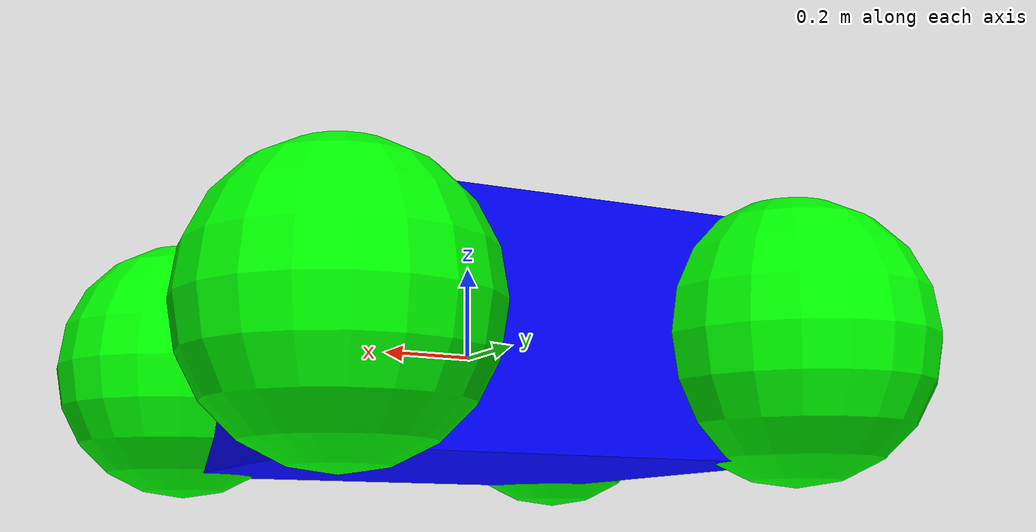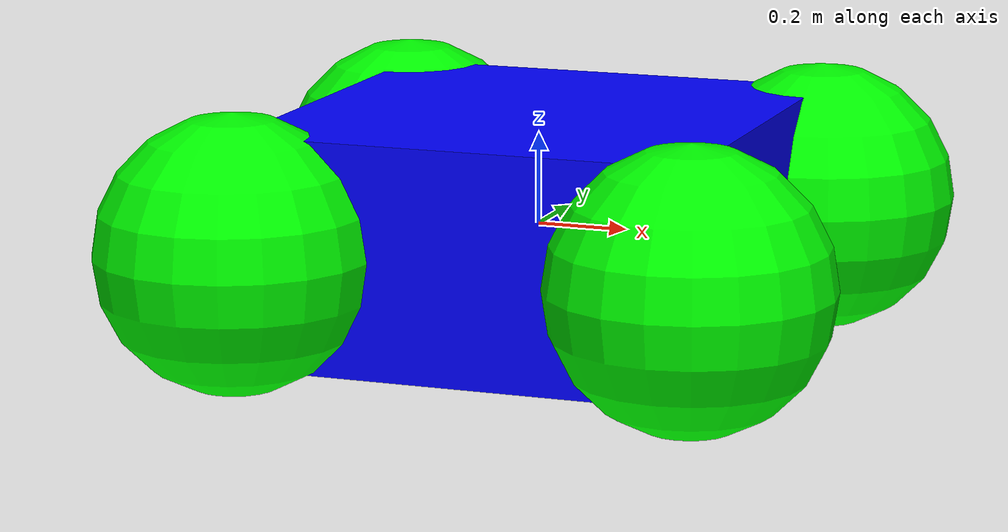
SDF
<sdf version='1.8'>
  <model name="CasterRobo">
  <pose>0 0 0 0 0 0</pose>

    <link name="base_footprint"/>

    <link name="base_link">
      <pose>0 0 0 0 0 0</pose>
      <inertial> <!--inertial properties of the link mass, inertia matix-->
          <mass>1.14395</mass>
          <inertia>
              <ixx>0.095329</ixx>
              <ixy>0</ixy>
              <ixz>0</ixz>
              <iyy>0.381317</iyy>
              <iyz>0</iyz>
              <izz>0.476646</izz>
          </inertia>
      </inertial>
      <collision name='collision'>
        <geometry>
            <box>
                <size>1.0 1.0 0.5</size>
            </box>
        </geometry>
      </collision>
      <visual name='visual'>
        <geometry>
            <box>
                <size>1.0 1.0 0.5</size>
            </box>
        </geometry>
        <!--let's add color to our link-->
        <material>
            <ambient>0.0 0.0 1.0 1</ambient>
            <diffuse>0.0 0.0 1.0 1</diffuse>
            <specular>0.0 0.0 1.0 1</specular>
        </material>
      </visual>
    </link>

    <joint name="base_joint" type="fixed">
      <parent>base_footprint</parent>
      <child>base_link</child>
    </joint>

    <link name='caster_back_left_link'>
      <pose>-0.5 0.5 0 0 0 0</pose>
      <inertial>
        <mass>0.001</mass>
        <inertia>
          <ixx>0.00001</ixx>
          <ixy>0.000</ixy>
          <ixz>0.000</ixz>
          <iyy>0.00001</iyy>
          <iyz>0.000</iyz>
          <izz>0.00001</izz>
        </inertia>
      </inertial>
      <visual name='caster_back_left_visual'>
          <geometry>
              <sphere>
                  <radius>0.3</radius>
              </sphere>
          </geometry>
          <material>
              <ambient>0.0 1 0.0 1</ambient>
              <diffuse>0.0 1 0.0 1</diffuse>
              <specular>0.0 1 0.0 1</specular>
          </material>
        </visual>
      <collision name='caster_back_left_collision'>
        <geometry>
          <sphere>
            <radius>0.3</radius>
          </sphere>
        </geometry>
      </collision>
    </link>
    <joint name='caster_back_left_joint' type='ball'>
      <parent>base_link</parent>
      <child>caster_back_left_link</child>
    </joint>

    <link name='caster_back_right_link'>
      <pose>-0.5 -0.5 0 0 0 0</pose>
      <inertial>
        <mass>0.001</mass>
        <inertia>
          <ixx>0.00001</ixx>
          <ixy>0.000</ixy>
          <ixz>0.000</ixz>
          <iyy>0.00001</iyy>
          <iyz>0.000</iyz>
          <izz>0.00001</izz>
        </inertia>
      </inertial>
      <visual name='caster_back_right_visual'>
          <geometry>
              <sphere>
                  <radius>0.3</radius>
              </sphere>
          </geometry>
          <material>
              <ambient>0.0 1 0.0 1</ambient>
              <diffuse>0.0 1 0.0 1</diffuse>
              <specular>0.0 1 0.0 1</specular>
          </material>
        </visual>
      <collision name='caster_back_right_collision'>
        <geometry>
          <sphere>
            <radius>0.3</radius>
          </sphere>
        </geometry>
      </collision>
    </link>
    <joint name='caster_back_right_joint' type='ball'>
      <parent>base_link</parent>
      <child>caster_back_right_link</child>
    </joint>

    <link name='caster_front_left_link'>
      <pose>0.5 0.5 0 0 0 0</pose>
      <inertial>
        <mass>0.001</mass>
        <inertia>
          <ixx>0.00001</ixx>
          <ixy>0.000</ixy>
          <ixz>0.000</ixz>
          <iyy>0.00001</iyy>
          <iyz>0.000</iyz>
          <izz>0.00001</izz>
        </inertia>
      </inertial>
      <visual name='caster_front_left_visual'>
          <geometry>
              <sphere>
                  <radius>0.3</radius>
              </sphere>
          </geometry>
          <material>
              <ambient>0.0 1 0.0 1</ambient>
              <diffuse>0.0 1 0.0 1</diffuse>
              <specular>0.0 1 0.0 1</specular>
          </material>
        </visual>
      <collision name='caster_front_leftcollision'>
        <geometry>
          <sphere>
            <radius>0.3</radius>
          </sphere>
        </geometry>
      </collision>
    </link>
    <joint name='caster_front_left_joint' type='ball'>
      <parent>base_link</parent>
      <child>caster_front_left_link</child>
    </joint>

    <link name='caster_front_right_link'>
      <pose>0.5 -0.5 0 0 0 0</pose>
      <inertial>
        <mass>0.001</mass>
        <inertia>
          <ixx>0.00001</ixx>
          <ixy>0.000</ixy>
          <ixz>0.000</ixz>
          <iyy>0.00001</iyy>
          <iyz>0.000</iyz>
          <izz>0.00001</izz>
        </inertia>
      </inertial>
      <visual name='caster_front_right_visual'>
          <geometry>
              <sphere>
                  <radius>0.3</radius>
              </sphere>
          </geometry>
          <material>
              <ambient>0.0 1 0.0 1</ambient>
              <diffuse>0.0 1 0.0 1</diffuse>
              <specular>0.0 1 0.0 1</specular>
          </material>
        </visual>
      <collision name='caster_front_right_collision'>
        <geometry>
          <sphere>
            <radius>0.3</radius>
          </sphere>
        </geometry>
      </collision>
    </link>
    <joint name='caster_front_right_joint' type='ball'>
      <parent>base_link</parent>
      <child>caster_front_right_link</child>
    </joint>

    <!-- Global odometer -->
    <plugin
      filename="ignition-gazebo-odometry-publisher-system"
      name="ignition::gazebo::systems::OdometryPublisher">
      <odom_publish_frequency>50</odom_publish_frequency>
      <odom_topic>/odom</odom_topic>
      <odom_frame>odom</odom_frame>
      <robot_base_frame>base_footprint</robot_base_frame>
      <tf_topic>/odom/tf</tf_topic>
    </plugin>

    <!-- Joint state publisher -->
    <plugin filename="libignition-gazebo-joint-state-publisher-system.so"
      name="ignition::gazebo::systems::JointStatePublisher">
      <topic>joint_states</topic>
    </plugin>
  </model>
</sdf>
